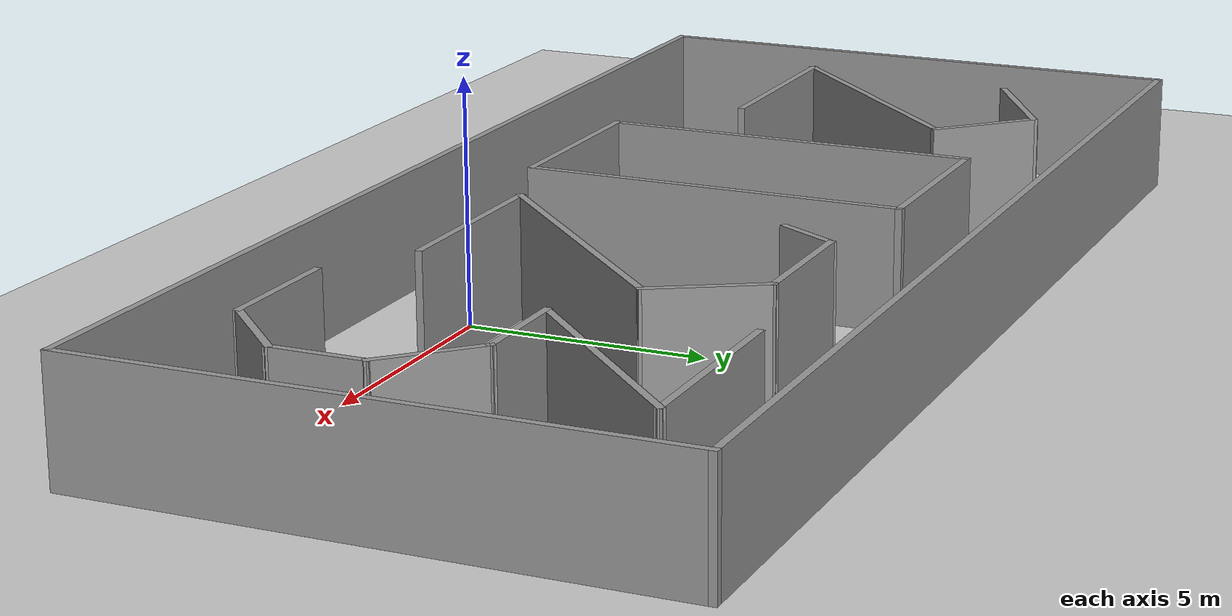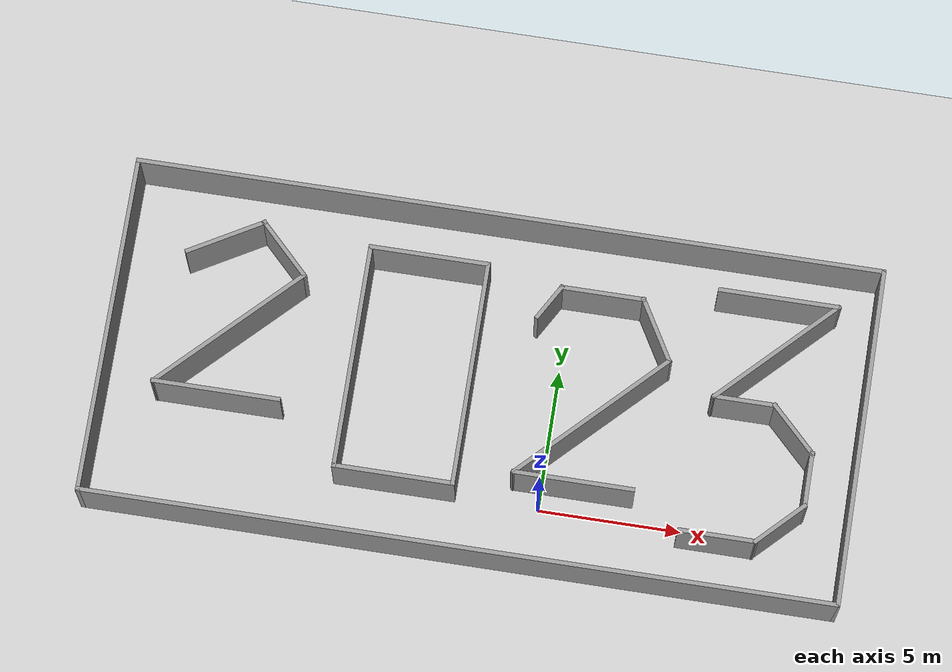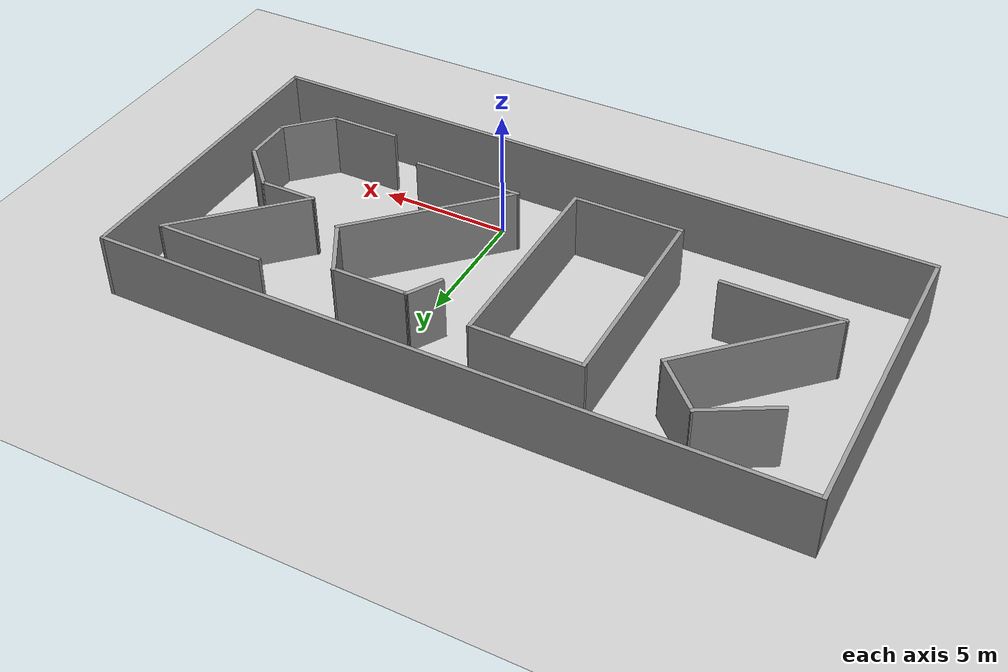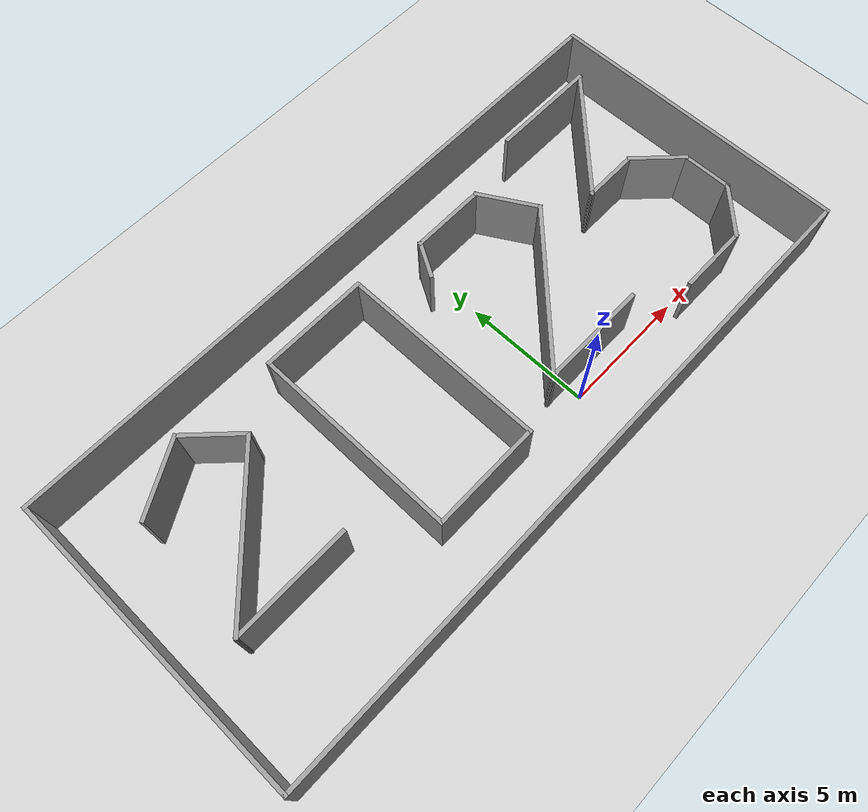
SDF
<sdf version="1.7">
 <world name="default">
  <light name="sun" type="directional">
   <pose>0 0 10 0 -0 0</pose>
   <diffuse>0.8 0.8 0.8 1</diffuse>
   <specular>0.2 0.2 0.2 1</specular>
   <attenuation>
    <range>1000</range>
    <constant>0.9</constant>
    <linear>0.01</linear>
    <quadratic>0.001</quadratic>
   </attenuation>
   <direction>-0.5 0.1 -0.9</direction>
   <spot><inner_angle>0</inner_angle><outer_angle>0</outer_angle><falloff>0</falloff></spot>
  </light>
  <model name="ground_plane">
   <static>1</static>
   <link name="link">
    <collision name="collision">
     <geometry><plane><normal>0 0 1</normal><size>100 100</size></plane></geometry>
     <surface><friction><ode><mu>100</mu><mu2>50</mu2></ode></friction></surface>
    </collision>
    <visual name="visual">
     <cast_shadows>0</cast_shadows>
     <geometry><plane><normal>0 0 1</normal><size>100 100</size></plane></geometry>
     <material>
      <script><uri>file://media/materials/scripts/gazebo.material</uri><name>Gazebo/Grey</name></script>
     </material>
    </visual>
   </link>
  </model>
  <gravity>0 0 -9.8</gravity>
  <magnetic_field>6e-06 2.3e-05 -4.2e-05</magnetic_field>
  <atmosphere type="adiabatic"/>
  <physics type="ode">
   <max_step_size>0.001</max_step_size>
   <real_time_factor>1</real_time_factor>
   <real_time_update_rate>1000</real_time_update_rate>
  </physics>
  <scene><ambient>0.4 0.4 0.4 1</ambient><background>0.7 0.7 0.7 1</background><shadows>1</shadows></scene>
  <audio><device>default</device></audio>
  <spherical_coordinates>
   <surface_model>EARTH_WGS84</surface_model>
   <latitude_deg>0</latitude_deg>
   <longitude_deg>0</longitude_deg>
   <elevation>0</elevation>
   <heading_deg>0</heading_deg>
  </spherical_coordinates>
  <model name="2023">
   <pose>-2.48014 3.71175 0 0 -0 0</pose>
   <link name="Wall_10">
    <collision name="Wall_10_Collision">
     <geometry><box><size>4.5 0.15 2.5</size></box></geometry>
     <pose>0 0 1.25 0 -0 0</pose>
    </collision>
    <visual name="Wall_10_Visual">
     <pose>0 0 1.25 0 -0 0</pose>
     <geometry><box><size>4.5 0.15 2.5</size></box></geometry>
     <material>
      <script><uri>file://media/materials/scripts/gazebo.material</uri><name>Gazebo/Grey</name></script>
      <ambient>1 1 1 1</ambient>
     </material>
     <meta><layer>0</layer></meta>
    </visual>
    <pose>-8.99811 -1.77431 0 0 -0 0</pose>
   </link>
   <link name="Wall_12">
    <collision name="Wall_12_Collision">
     <geometry><box><size>8 0.15 2.5</size></box></geometry>
     <pose>0 0 1.25 0 -0 0</pose>
    </collision>
    <visual name="Wall_12_Visual">
     <pose>0 0 1.25 0 -0 0</pose>
     <geometry><box><size>8 0.15 2.5</size></box></geometry>
     <material>
      <script><uri>file://media/materials/scripts/gazebo.material</uri><name>Gazebo/Grey</name></script>
      <ambient>1 1 1 1</ambient>
     </material>
     <meta><layer>0</layer></meta>
    </visual>
    <pose>-4.57245 0.159355 0 0 -0 -1.5708</pose>
   </link>
   <link name="Wall_13">
    <collision name="Wall_13_Collision">
     <geometry><box><size>4.25 0.15 2.5</size></box></geometry>
     <pose>0 0 1.25 0 -0 0</pose>
    </collision>
    <visual name="Wall_13_Visual">
     <pose>0 0 1.25 0 -0 0</pose>
     <geometry><box><size>4.25 0.15 2.5</size></box></geometry>
     <material>
      <script><uri>file://media/materials/scripts/gazebo.material</uri><name>Gazebo/Grey</name></script>
      <ambient>1 1 1 1</ambient>
     </material>
     <meta><layer>0</layer></meta>
    </visual>
    <pose>-2.52244 -3.76565 0 0 -0 0</pose>
   </link>
   <link name="Wall_14">
    <collision name="Wall_14_Collision">
     <geometry><box><size>8 0.15 2.5</size></box></geometry>
     <pose>0 0 1.25 0 -0 0</pose>
    </collision>
    <visual name="Wall_14_Visual">
     <pose>0 0 1.25 0 -0 0</pose>
     <geometry><box><size>8 0.15 2.5</size></box></geometry>
     <material>
      <script><uri>file://media/materials/scripts/gazebo.material</uri><name>Gazebo/Grey</name></script>
      <ambient>1 1 1 1</ambient>
     </material>
     <meta><layer>0</layer></meta>
    </visual>
    <pose>-0.472445 0.159355 0 0 -0 1.5708</pose>
   </link>
   <link name="Wall_15">
    <collision name="Wall_15_Collision">
     <geometry><box><size>4.25 0.15 2.5</size></box></geometry>
     <pose>0 0 1.25 0 -0 0</pose>
    </collision>
    <visual name="Wall_15_Visual">
     <pose>0 0 1.25 0 -0 0</pose>
     <geometry><box><size>4.25 0.15 2.5</size></box></geometry>
     <material>
      <script><uri>file://media/materials/scripts/gazebo.material</uri><name>Gazebo/Grey</name></script>
      <ambient>1 1 1 1</ambient>
     </material>
     <meta><layer>0</layer></meta>
    </visual>
    <pose>-2.52244 4.08436 0 0 -0 3.14159</pose>
   </link>
   <link name="Wall_17">
    <collision name="Wall_17_Collision">
     <geometry><box><size>1.5 0.15 2.5</size></box></geometry>
     <pose>0 0 1.25 0 -0 0</pose>
    </collision>
    <visual name="Wall_17_Visual">
     <pose>0 0 1.25 0 -0 0</pose>
     <geometry><box><size>1.5 0.15 2.5</size></box></geometry>
     <material>
      <script><uri>file://media/materials/scripts/gazebo.material</uri><name>Gazebo/Grey</name></script>
      <ambient>1 1 1 1</ambient>
     </material>
     <meta><layer>0</layer></meta>
    </visual>
    <pose>1.82192 3.07823 0 0 -0 1.0472</pose>
   </link>
   <link name="Wall_18">
    <collision name="Wall_18_Collision">
     <geometry><box><size>3 0.15 2.5</size></box></geometry>
     <pose>0 0 1.25 0 -0 0</pose>
    </collision>
    <visual name="Wall_18_Visual">
     <pose>0 0 1.25 0 -0 0</pose>
     <geometry><box><size>3 0.15 2.5</size></box></geometry>
     <material>
      <script><uri>file://media/materials/scripts/gazebo.material</uri><name>Gazebo/Grey</name></script>
      <ambient>1 1 1 1</ambient>
     </material>
     <meta><layer>0</layer></meta>
    </visual>
    <pose>3.58442 3.6628 0 0 -0 0</pose>
   </link>
   <link name="Wall_19">
    <collision name="Wall_19_Collision">
     <geometry><box><size>2.5 0.15 2.5</size></box></geometry>
     <pose>0 0 1.25 0 -0 0</pose>
    </collision>
    <visual name="Wall_19_Visual">
     <pose>0 0 1.25 0 -0 0</pose>
     <geometry><box><size>2.5 0.15 2.5</size></box></geometry>
     <material>
      <script><uri>file://media/materials/scripts/gazebo.material</uri><name>Gazebo/Grey</name></script>
      <ambient>1 1 1 1</ambient>
     </material>
     <meta><layer>0</layer></meta>
    </visual>
    <pose>5.59692 2.64522 0 0 -0 -1.0472</pose>
   </link>
   <link name="Wall_2">
    <collision name="Wall_2_Collision">
     <geometry><box><size>12 0.15 2.5</size></box></geometry>
     <pose>0 0 1.25 0 -0 0</pose>
    </collision>
    <visual name="Wall_2_Visual">
     <pose>0 0 1.25 0 -0 0</pose>
     <geometry><box><size>12 0.15 2.5</size></box></geometry>
     <material>
      <script><uri>file://media/materials/scripts/gazebo.material</uri><name>Gazebo/Grey</name></script>
      <ambient>1 1 1 1</ambient>
     </material>
     <meta><layer>0</layer></meta>
    </visual>
    <pose>-13.05 -0 0 0 -0 -1.5708</pose>
   </link>
   <link name="Wall_20">
    <collision name="Wall_20_Collision">
     <geometry><box><size>6.75 0.15 2.5</size></box></geometry>
     <pose>0 0 1.25 0 -0 0</pose>
    </collision>
    <visual name="Wall_20_Visual">
     <pose>0 0 1.25 0 -0 0</pose>
     <geometry><box><size>6.75 0.15 2.5</size></box></geometry>
     <material>
      <script><uri>file://media/materials/scripts/gazebo.material</uri><name>Gazebo/Grey</name></script>
      <ambient>1 1 1 1</ambient>
     </material>
     <meta><layer>0</layer></meta>
    </visual>
    <pose>3.85097 -0.705815 0 0 -0 -2.35619</pose>
   </link>
   <link name="Wall_21">
    <collision name="Wall_21_Collision">
     <geometry><box><size>4.25 0.15 2.5</size></box></geometry>
     <pose>0 0 1.25 0 -0 0</pose>
    </collision>
    <visual name="Wall_21_Visual">
     <pose>0 0 1.25 0 -0 0</pose>
     <geometry><box><size>4.25 0.15 2.5</size></box></geometry>
     <material>
      <script><uri>file://media/materials/scripts/gazebo.material</uri><name>Gazebo/Grey</name></script>
      <ambient>1 1 1 1</ambient>
     </material>
     <meta><layer>0</layer></meta>
    </visual>
    <pose>3.56752 -3.03927 0 0 -0 0</pose>
   </link>
   <link name="Wall_23">
    <collision name="Wall_23_Collision">
     <geometry><box><size>4.25 0.15 2.5</size></box></geometry>
     <pose>0 0 1.25 0 -0 0</pose>
    </collision>
    <visual name="Wall_23_Visual">
     <pose>0 0 1.25 0 -0 0</pose>
     <geometry><box><size>4.25 0.15 2.5</size></box></geometry>
     <material>
      <script><uri>file://media/materials/scripts/gazebo.material</uri><name>Gazebo/Grey</name></script>
      <ambient>1 1 1 1</ambient>
     </material>
     <meta><layer>0</layer></meta>
    </visual>
    <pose>9.62188 4.42085 0 0 -0 0</pose>
   </link>
   <link name="Wall_24">
    <collision name="Wall_24_Collision">
     <geometry><box><size>5.5 0.15 2.5</size></box></geometry>
     <pose>0 0 1.25 0 -0 0</pose>
    </collision>
    <visual name="Wall_24_Visual">
     <pose>0 0 1.25 0 -0 0</pose>
     <geometry><box><size>5.5 0.15 2.5</size></box></geometry>
     <material>
      <script><uri>file://media/materials/scripts/gazebo.material</uri><name>Gazebo/Grey</name></script>
      <ambient>1 1 1 1</ambient>
     </material>
     <meta><layer>0</layer></meta>
    </visual>
    <pose>9.78036 2.52934 0 0 -0 -2.35619</pose>
   </link>
   <link name="Wall_25">
    <collision name="Wall_25_Collision">
     <geometry><box><size>2.25 0.15 2.5</size></box></geometry>
     <pose>0 0 1.25 0 -0 0</pose>
    </collision>
    <visual name="Wall_25_Visual">
     <pose>0 0 1.25 0 -0 0</pose>
     <geometry><box><size>2.25 0.15 2.5</size></box></geometry>
     <material>
      <script><uri>file://media/materials/scripts/gazebo.material</uri><name>Gazebo/Grey</name></script>
      <ambient>1 1 1 1</ambient>
     </material>
     <meta><layer>0</layer></meta>
    </visual>
    <pose>8.93886 0.637826 0 0 -0 0</pose>
   </link>
   <link name="Wall_26">
    <collision name="Wall_26_Collision">
     <geometry><box><size>2.25 0.15 2.5</size></box></geometry>
     <pose>0 0 1.25 0 -0 0</pose>
    </collision>
    <visual name="Wall_26_Visual">
     <pose>0 0 1.25 0 -0 0</pose>
     <geometry><box><size>2.25 0.15 2.5</size></box></geometry>
     <material>
      <script><uri>file://media/materials/scripts/gazebo.material</uri><name>Gazebo/Grey</name></script>
      <ambient>1 1 1 1</ambient>
     </material>
     <meta><layer>0</layer></meta>
    </visual>
    <pose>10.7313 -0.104636 0 0 -0 -0.785398</pose>
   </link>
   <link name="Wall_27">
    <collision name="Wall_27_Collision">
     <geometry><box><size>2 0.15 2.5</size></box></geometry>
     <pose>0 0 1.25 0 -0 0</pose>
    </collision>
    <visual name="Wall_27_Visual">
     <pose>0 0 1.25 0 -0 0</pose>
     <geometry><box><size>2 0.15 2.5</size></box></geometry>
     <material>
      <script><uri>file://media/materials/scripts/gazebo.material</uri><name>Gazebo/Grey</name></script>
      <ambient>1 1 1 1</ambient>
     </material>
     <meta><layer>0</layer></meta>
    </visual>
    <pose>11.4738 -1.7721 0 0 -0 -1.5708</pose>
   </link>
   <link name="Wall_28">
    <collision name="Wall_28_Collision">
     <geometry><box><size>2.25 0.15 2.5</size></box></geometry>
     <pose>0 0 1.25 0 -0 0</pose>
    </collision>
    <visual name="Wall_28_Visual">
     <pose>0 0 1.25 0 -0 0</pose>
     <geometry><box><size>2.25 0.15 2.5</size></box></geometry>
     <material>
      <script><uri>file://media/materials/scripts/gazebo.material</uri><name>Gazebo/Grey</name></script>
      <ambient>1 1 1 1</ambient>
     </material>
     <meta><layer>0</layer></meta>
    </visual>
    <pose>10.7313 -3.43956 0 0 -0 -2.35619</pose>
   </link>
   <link name="Wall_29">
    <collision name="Wall_29_Collision">
     <geometry><box><size>2.75 0.15 2.5</size></box></geometry>
     <pose>0 0 1.25 0 -0 0</pose>
    </collision>
    <visual name="Wall_29_Visual">
     <pose>0 0 1.25 0 -0 0</pose>
     <geometry><box><size>2.75 0.15 2.5</size></box></geometry>
     <material>
      <script><uri>file://media/materials/scripts/gazebo.material</uri><name>Gazebo/Grey</name></script>
      <ambient>1 1 1 1</ambient>
     </material>
     <meta><layer>0</layer></meta>
    </visual>
    <pose>8.68886 -4.18202 0 0 -0 3.14159</pose>
   </link>
   <link name="Wall_3">
    <collision name="Wall_3_Collision">
     <geometry><box><size>26.25 0.15 2.5</size></box></geometry>
     <pose>0 0 1.25 0 -0 0</pose>
    </collision>
    <visual name="Wall_3_Visual">
     <pose>0 0 1.25 0 -0 0</pose>
     <geometry><box><size>26.25 0.15 2.5</size></box></geometry>
     <material>
      <script><uri>file://media/materials/scripts/gazebo.material</uri><name>Gazebo/Grey</name></script>
      <ambient>1 1 1 1</ambient>
     </material>
     <meta><layer>0</layer></meta>
    </visual>
    <pose>0 -5.925 0 0 -0 0</pose>
   </link>
   <link name="Wall_4">
    <collision name="Wall_4_Collision">
     <geometry><box><size>12 0.15 2.5</size></box></geometry>
     <pose>0 0 1.25 0 -0 0</pose>
    </collision>
    <visual name="Wall_4_Visual">
     <pose>0 0 1.25 0 -0 0</pose>
     <geometry><box><size>12 0.15 2.5</size></box></geometry>
     <material>
      <script><uri>file://media/materials/scripts/gazebo.material</uri><name>Gazebo/Grey</name></script>
      <ambient>1 1 1 1</ambient>
     </material>
     <meta><layer>0</layer></meta>
    </visual>
    <pose>13.05 -0 0 0 -0 1.5708</pose>
   </link>
   <link name="Wall_5">
    <collision name="Wall_5_Collision">
     <geometry><box><size>26.25 0.15 2.5</size></box></geometry>
     <pose>0 0 1.25 0 -0 0</pose>
    </collision>
    <visual name="Wall_5_Visual">
     <pose>0 0 1.25 0 -0 0</pose>
     <geometry><box><size>26.25 0.15 2.5</size></box></geometry>
     <material>
      <script><uri>file://media/materials/scripts/gazebo.material</uri><name>Gazebo/Grey</name></script>
      <ambient>1 1 1 1</ambient>
     </material>
     <meta><layer>0</layer></meta>
    </visual>
    <pose>0 5.925 0 0 -0 3.14159</pose>
   </link>
   <link name="Wall_7">
    <collision name="Wall_7_Collision">
     <geometry><box><size>3 0.15 2.5</size></box></geometry>
     <pose>0 0 1.25 0 -0 0</pose>
    </collision>
    <visual name="Wall_7_Visual">
     <pose>0 0 1.25 0 -0 0</pose>
     <geometry><box><size>3 0.15 2.5</size></box></geometry>
     <material>
      <script><uri>file://media/materials/scripts/gazebo.material</uri><name>Gazebo/Grey</name></script>
      <ambient>1 1 1 1</ambient>
     </material>
     <meta><layer>0</layer></meta>
    </visual>
    <pose>-9.57877 3.66502 0 0 -0 0.523599</pose>
   </link>
   <link name="Wall_8">
    <collision name="Wall_8_Collision">
     <geometry><box><size>2.5 0.15 2.5</size></box></geometry>
     <pose>0 0 1.25 0 -0 0</pose>
    </collision>
    <visual name="Wall_8_Visual">
     <pose>0 0 1.25 0 -0 0</pose>
     <geometry><box><size>2.5 0.15 2.5</size></box></geometry>
     <material>
      <script><uri>file://media/materials/scripts/gazebo.material</uri><name>Gazebo/Grey</name></script>
      <ambient>1 1 1 1</ambient>
     </material>
     <meta><layer>0</layer></meta>
    </visual>
    <pose>-7.51383 3.54667 0 0 -0 -0.785398</pose>
   </link>
   <link name="Wall_9">
    <collision name="Wall_9_Collision">
     <geometry><box><size>6.5 0.15 2.5</size></box></geometry>
     <pose>0 0 1.25 0 -0 0</pose>
    </collision>
    <visual name="Wall_9_Visual">
     <pose>0 0 1.25 0 -0 0</pose>
     <geometry><box><size>6.5 0.15 2.5</size></box></geometry>
     <material>
      <script><uri>file://media/materials/scripts/gazebo.material</uri><name>Gazebo/Grey</name></script>
      <ambient>1 1 1 1</ambient>
     </material>
     <meta><layer>0</layer></meta>
    </visual>
    <pose>-8.92804 0.470751 0 0 -0 -2.35619</pose>
   </link>
   <static>1</static>
  </model>
 </world>
</sdf>
